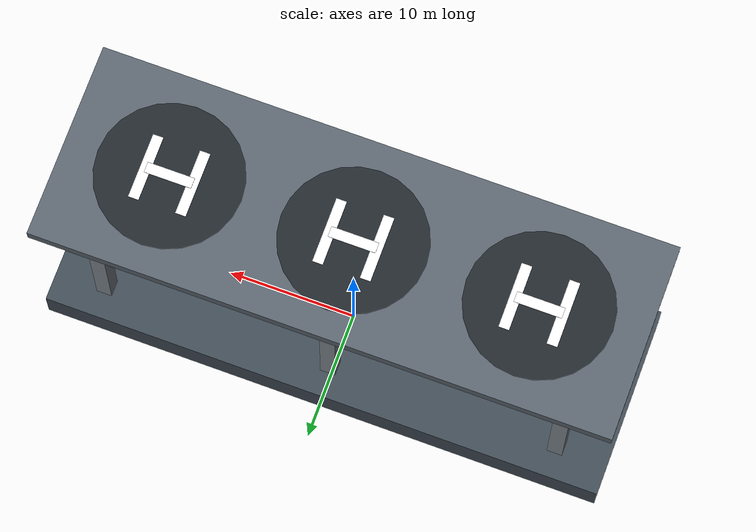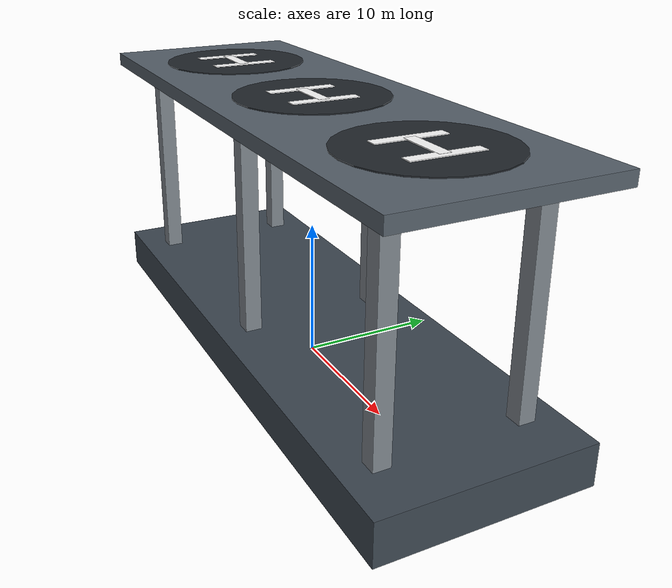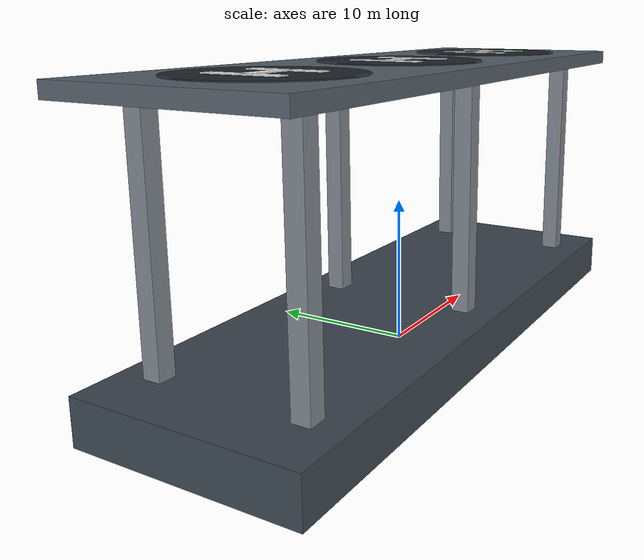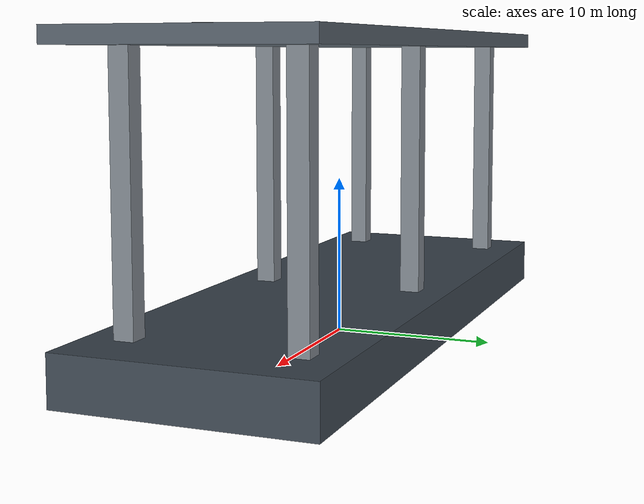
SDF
<?xml version="1.0"?>
<sdf version="1.9">
  <model name="sim332_island_uav_base">
    <static>true</static>
    <link name="base_link">
      <collision name="foundation_collision"><pose>0 0 1.5 0 0 0</pose><geometry><box><size>44 15 3</size></box></geometry></collision>
      <visual name="foundation"><pose>0 0 1.5 0 0 0</pose><geometry><box><size>44 15 3</size></box></geometry><material><ambient>0.12 0.14 0.16 1</ambient><diffuse>0.24 0.28 0.32 1</diffuse></material></visual>

      <collision name="deck_collision"><pose>0 0 19.0 0 0 0</pose><geometry><box><size>44 15 1.0</size></box></geometry></collision>
      <visual name="deck"><pose>0 0 19.0 0 0 0</pose><geometry><box><size>44 15 1.0</size></box></geometry><material><ambient>0.18 0.20 0.22 1</ambient><diffuse>0.34 0.38 0.42 1</diffuse><specular>0.45 0.48 0.50 1</specular></material></visual>

      <collision name="column_01_collision"><pose>-18 -5 10.6 0 0 0</pose><geometry><box><size>1.2 1.2 16.8</size></box></geometry></collision>
      <collision name="column_02_collision"><pose>-18 5 10.6 0 0 0</pose><geometry><box><size>1.2 1.2 16.8</size></box></geometry></collision>
      <collision name="column_03_collision"><pose>0 -5 10.6 0 0 0</pose><geometry><box><size>1.2 1.2 16.8</size></box></geometry></collision>
      <collision name="column_04_collision"><pose>0 5 10.6 0 0 0</pose><geometry><box><size>1.2 1.2 16.8</size></box></geometry></collision>
      <collision name="column_05_collision"><pose>18 -5 10.6 0 0 0</pose><geometry><box><size>1.2 1.2 16.8</size></box></geometry></collision>
      <collision name="column_06_collision"><pose>18 5 10.6 0 0 0</pose><geometry><box><size>1.2 1.2 16.8</size></box></geometry></collision>

      <visual name="column_01"><pose>-18 -5 10.6 0 0 0</pose><geometry><box><size>1.2 1.2 16.8</size></box></geometry><material><ambient>0.28 0.30 0.32 1</ambient><diffuse>0.50 0.53 0.56 1</diffuse></material></visual>
      <visual name="column_02"><pose>-18 5 10.6 0 0 0</pose><geometry><box><size>1.2 1.2 16.8</size></box></geometry><material><ambient>0.28 0.30 0.32 1</ambient><diffuse>0.50 0.53 0.56 1</diffuse></material></visual>
      <visual name="column_03"><pose>0 -5 10.6 0 0 0</pose><geometry><box><size>1.2 1.2 16.8</size></box></geometry><material><ambient>0.28 0.30 0.32 1</ambient><diffuse>0.50 0.53 0.56 1</diffuse></material></visual>
      <visual name="column_04"><pose>0 5 10.6 0 0 0</pose><geometry><box><size>1.2 1.2 16.8</size></box></geometry><material><ambient>0.28 0.30 0.32 1</ambient><diffuse>0.50 0.53 0.56 1</diffuse></material></visual>
      <visual name="column_05"><pose>18 -5 10.6 0 0 0</pose><geometry><box><size>1.2 1.2 16.8</size></box></geometry><material><ambient>0.28 0.30 0.32 1</ambient><diffuse>0.50 0.53 0.56 1</diffuse></material></visual>
      <visual name="column_06"><pose>18 5 10.6 0 0 0</pose><geometry><box><size>1.2 1.2 16.8</size></box></geometry><material><ambient>0.28 0.30 0.32 1</ambient><diffuse>0.50 0.53 0.56 1</diffuse></material></visual>

      <collision name="pad_01_collision"><pose>-14 0 19.54 0 0 0</pose><geometry><cylinder><radius>5.5</radius><length>0.08</length></cylinder></geometry></collision>
      <collision name="pad_02_collision"><pose>0 0 19.54 0 0 0</pose><geometry><cylinder><radius>5.5</radius><length>0.08</length></cylinder></geometry></collision>
      <collision name="pad_03_collision"><pose>14 0 19.54 0 0 0</pose><geometry><cylinder><radius>5.5</radius><length>0.08</length></cylinder></geometry></collision>
      <visual name="pad_01"><pose>-14 0 19.54 0 0 0</pose><geometry><cylinder><radius>5.5</radius><length>0.08</length></cylinder></geometry><material><ambient>0.08 0.09 0.10 1</ambient><diffuse>0.13 0.15 0.17 1</diffuse></material></visual>
      <visual name="pad_02"><pose>0 0 19.54 0 0 0</pose><geometry><cylinder><radius>5.5</radius><length>0.08</length></cylinder></geometry><material><ambient>0.08 0.09 0.10 1</ambient><diffuse>0.13 0.15 0.17 1</diffuse></material></visual>
      <visual name="pad_03"><pose>14 0 19.54 0 0 0</pose><geometry><cylinder><radius>5.5</radius><length>0.08</length></cylinder></geometry><material><ambient>0.08 0.09 0.10 1</ambient><diffuse>0.13 0.15 0.17 1</diffuse></material></visual>

      <visual name="h01_left"><pose>-15.8 0 19.60 0 0 0</pose><geometry><box><size>0.8 5.0 0.08</size></box></geometry><material><ambient>1 1 1 1</ambient><diffuse>1 1 1 1</diffuse></material></visual>
      <visual name="h01_right"><pose>-12.2 0 19.60 0 0 0</pose><geometry><box><size>0.8 5.0 0.08</size></box></geometry><material><ambient>1 1 1 1</ambient><diffuse>1 1 1 1</diffuse></material></visual>
      <visual name="h01_cross"><pose>-14 0 19.61 0 0 0</pose><geometry><box><size>3.6 0.8 0.08</size></box></geometry><material><ambient>1 1 1 1</ambient><diffuse>1 1 1 1</diffuse></material></visual>
      <visual name="h02_left"><pose>-1.8 0 19.60 0 0 0</pose><geometry><box><size>0.8 5.0 0.08</size></box></geometry><material><ambient>1 1 1 1</ambient><diffuse>1 1 1 1</diffuse></material></visual>
      <visual name="h02_right"><pose>1.8 0 19.60 0 0 0</pose><geometry><box><size>0.8 5.0 0.08</size></box></geometry><material><ambient>1 1 1 1</ambient><diffuse>1 1 1 1</diffuse></material></visual>
      <visual name="h02_cross"><pose>0 0 19.61 0 0 0</pose><geometry><box><size>3.6 0.8 0.08</size></box></geometry><material><ambient>1 1 1 1</ambient><diffuse>1 1 1 1</diffuse></material></visual>
      <visual name="h03_left"><pose>12.2 0 19.60 0 0 0</pose><geometry><box><size>0.8 5.0 0.08</size></box></geometry><material><ambient>1 1 1 1</ambient><diffuse>1 1 1 1</diffuse></material></visual>
      <visual name="h03_right"><pose>15.8 0 19.60 0 0 0</pose><geometry><box><size>0.8 5.0 0.08</size></box></geometry><material><ambient>1 1 1 1</ambient><diffuse>1 1 1 1</diffuse></material></visual>
      <visual name="h03_cross"><pose>14 0 19.61 0 0 0</pose><geometry><box><size>3.6 0.8 0.08</size></box></geometry><material><ambient>1 1 1 1</ambient><diffuse>1 1 1 1</diffuse></material></visual>
    </link>
  </model>
</sdf>
